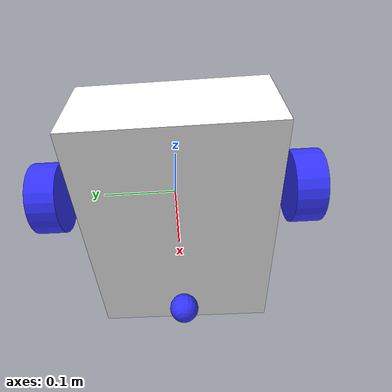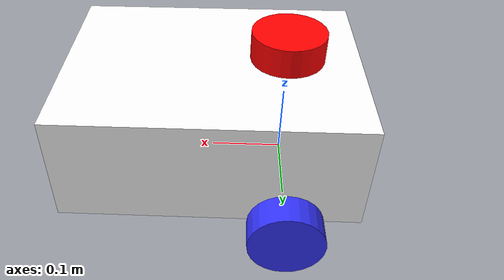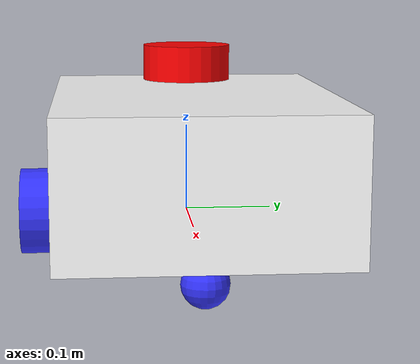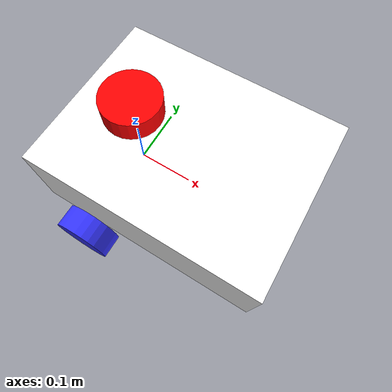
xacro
<?xml version="1.0"?>
<robot xmlns:xacro="http://www.ros.org/wiki/xacro"  name="robot">

    <xacro:include filename="robot_core.xacro"/>

    <xacro:include filename="gazebo_control.xacro"/>

    <xacro:include filename="lidar.xacro"/>

</robot>

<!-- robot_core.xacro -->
<robot xmlns:xacro="http://www.ros.org/wiki/xacro">

    <xacro:include filename="inertial_macros.xacro"/>
<!-- MATIREALS -->
    <material name="white">
        <color rgba="1 1 1 1"/>
    </material>

    <material name="orange">
        <color rgba="1 0.3 0.1 1"/>
    </material>

    <material name="blue">
        <color rgba="0.2 0.2 1 1"/>
    </material>

    <material name="black">
        <color rgba="0 0 0 1"/>
    </material>

<!-- BASE LINK -->
    <link name="base_link" >
     </link>

        <!-- CHASSIS -->
    <link name="chassis">
        <visual>
            <geometry>
                <box size="0.4 0.3 0.15"/>
            </geometry>
            <origin xyz="0.2 0.0 0.075"/>
            <material name="white"/>
        </visual>
        <collision>
            <geometry>
                <box size="0.4 0.3 0.15"/>
            </geometry>
            <origin xyz="0.2 0.0 0.075"/>
        </collision>
        <xacro:inertial_box mass="0.5" x="0.4" y="0.3" z="0.15">
            <origin xyz="0.02 0 0.075" rpy="0.0 0.0 0.0"/>
        </xacro:inertial_box>
    </link>

    <gazebo reference="chassis">
        <material>Gazebo/White</material>
    </gazebo>

    <joint name="chassi_link_joint" type="fixed">
        <parent link="base_link"/>
        <child link="chassis"/>
        <origin xyz="-0.1 0.0 0.0"/>
    </joint>

        <!-- LEFT WHEEEL -->
    <link name="left_wheel">
        <visual>
        <geometry>
            <cylinder radius="0.05" length="0.04"/>
            </geometry>
            <material name="blue"/>
        </visual>
        <collision>
            <geometry>
                <cylinder radius="0.05" length="0.04"/>
            </geometry>
        </collision>
        <xacro:inertial_cylinder mass="0.1" length="0.04" radius="0.03">
            <origin xyz="0.0 0 0.0" rpy="0.0 0.0 0.0"/>
        </xacro:inertial_cylinder>
    </link>

    <gazebo reference="left_wheel">
        <material>Gazebo/Blue</material>
    </gazebo>

    <joint name="left_wheel_joint" type="continuous">
        <parent link="base_link"/>
        <child link="left_wheel"/>
        <origin xyz="0.0 0.175 0.0" rpy="-${pi/2} 0.0 0.0"/>
        <axis xyz="0.0 0.0 1"/>
    </joint>

        <!-- RIGHT WHEEL -->
    <link name="right_wheel">
        <visual>
            <geometry>
                <cylinder radius="0.05" length="0.04"/>
            </geometry>
            <material name="blue"/>
        </visual>
        <collision>
            <geometry>
                <cylinder radius="0.05" length="0.04"/>
            </geometry>
        </collision>
        <xacro:inertial_cylinder mass="0.1" length="0.04" radius="0.03">
            <origin xyz="0.0 0 0.0" rpy="0.0 0.0 0.0"/>
        </xacro:inertial_cylinder>
    </link>
    <gazebo reference="right_wheel">
        <material>Gazebo/Blue</material>
    </gazebo>

    <joint name="right_wheel_joint" type="continuous">
        <parent link="base_link"/>
        <child link="right_wheel"/>
        <origin xyz="0.0 -0.175 0.0" rpy="${pi/2} 0.0 0.0"/>
        <axis xyz="0.0 0.0 -1"/>
    </joint>

    <!-- CASTER WHEEL LINK -->
    <link name="caster_wheel">
        <visual>
            <geometry>
                <sphere radius="0.025"/>
            </geometry>
            <material name="blue"/>
        </visual>
        <collision>
            <geometry>
                <sphere radius="0.025"/>
            </geometry>
            <material name="blue"/>
        </collision>
        <xacro:inertial_sphere mass="0.2" radius="0.025">
            <origin xyz="0.0 0 0.0" rpy="0.0 0.0 0.0"/>
        </xacro:inertial_sphere>
    </link>
    <gazebo reference="caster_wheel">
        <material>Gazebo/Blue</material>
        <mu1 value="0.001"/>
        <mu2 value="0.001"/>
    </gazebo>

    <joint name="caster_wheel_joint" type="fixed">
        <parent link="base_link"/>
        <child link="caster_wheel"/>
        <origin xyz="0.24 0.0 -0.025" rpy="0.0 0.0 0.0"/>
    </joint>
</robot>

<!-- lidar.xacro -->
<robot xmlns:xacro="http://www.ros.org/wiki/xacro" >
    <material name="red">
        <color rgba="1 0 0 1"/>
    </material>

    <joint name="laser_joint" type="fixed">
        <parent link="chassis"/>
        <child link="laser_frame"/>
        <origin xyz="0.1 0 0.175" rpy="0 0 0"/>
    </joint>

    <link name="laser_frame">
        <visual>
            <geometry>
                <cylinder radius="0.05" length="0.04"/>
            </geometry>
            <material name="red"/>
        </visual>
        <collision>
            <geometry>
                <cylinder radius="0.05" length="0.04"/>
            </geometry>
        </collision>
        <xacro:inertial_cylinder mass="0.1" length="0.04" radius="0.05">
            <origin xyz="0 0 0" rpy="0 0 0"/>
        </xacro:inertial_cylinder>
    </link>

    <gazebo reference="laser_frame">
        <material>Gazebo/Red</material>

        <sensor name="laser" type="ray">
            <pose> 0 0 0 0 0 0 </pose>
            <visualize>true</visualize>
            <update_rate>10</update_rate>
            <ray>
                <scan>
                    <horizontal>
                        <samples>360</samples>
                        <min_angle>-3.14</min_angle>
                        <max_angle>3.14</max_angle>
                    </horizontal>
                </scan>
                <range>
                    <min>0.3</min>
                    <max>12</max>
                </range>
            </ray>
            <plugin name="laser_controller" filename="libgazebo_ros_ray_sensor.so">
                <ros>
                    <argument>~/out:=scan</argument>
                </ros>
                <output_type>sensor_msgs/LaserScan</output_type>
                <frame_name>laser_frame</frame_name>
            </plugin>
        </sensor>
    </gazebo>

</robot>
